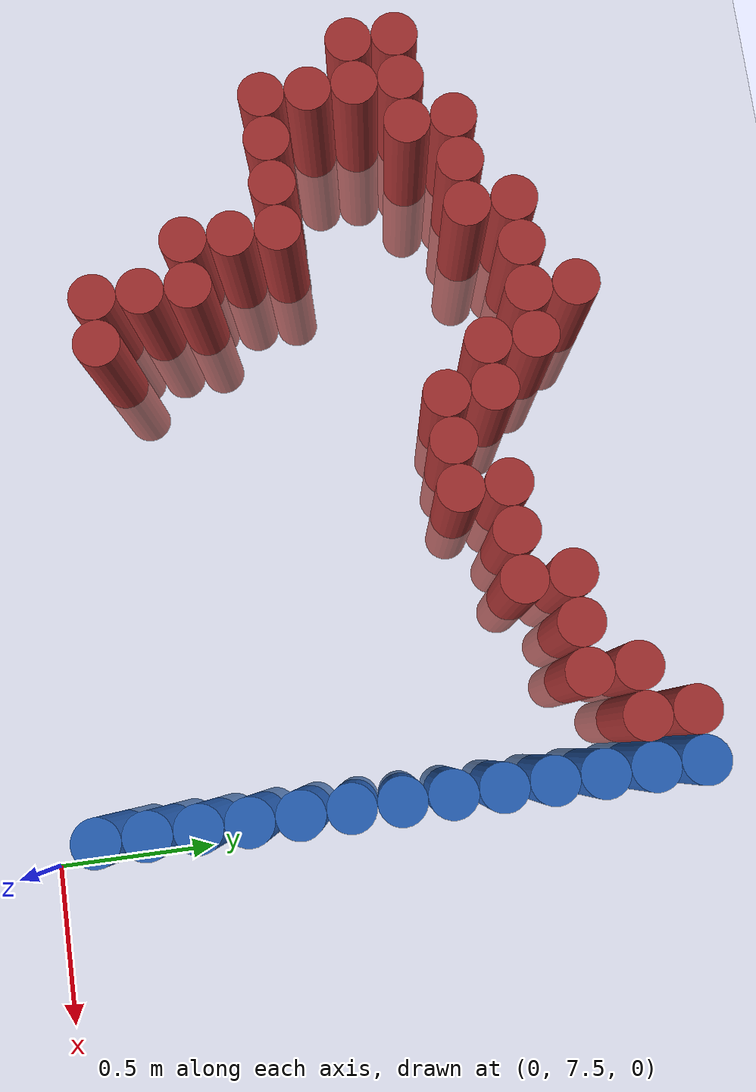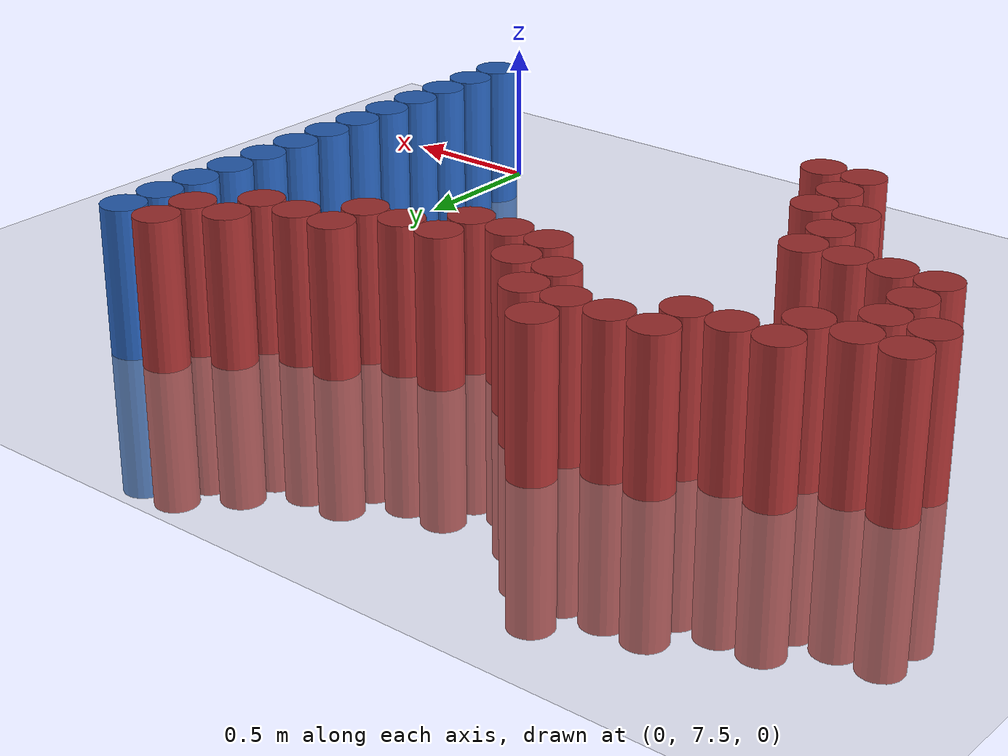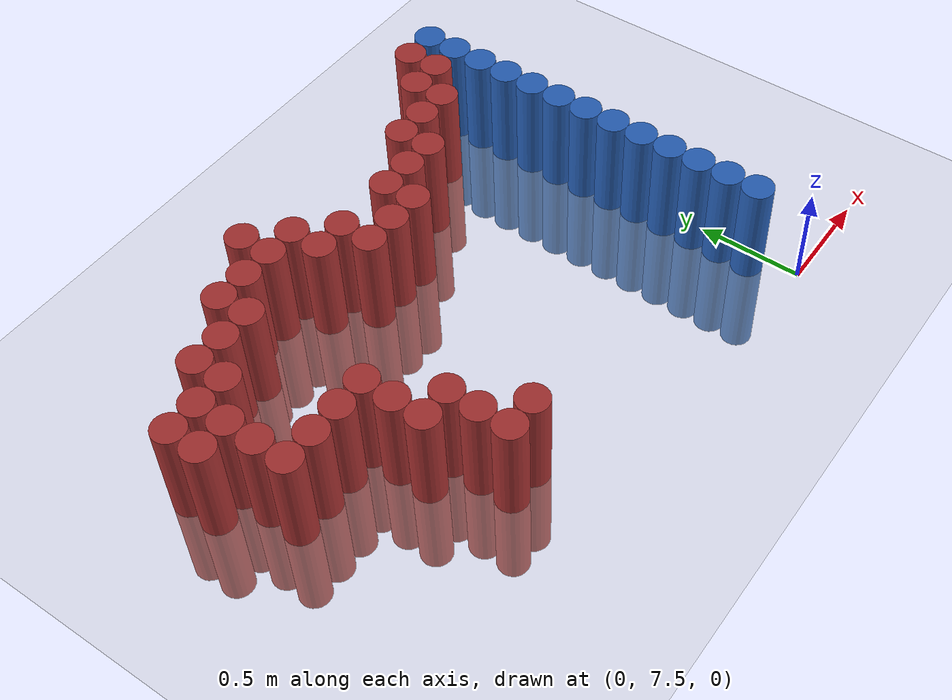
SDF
<sdf version="1.6">
 <world name="default">
  <model name="ground_plane">
   <static>1</static>
   <link name="link">
    <collision name="collision">
     <geometry><plane><normal>0 0 1</normal><size>100 100</size></plane></geometry>
     <surface><friction><ode><mu>100</mu><mu2>50</mu2></ode></friction></surface>
    </collision>
    <visual name="visual">
     <cast_shadows>0</cast_shadows>
     <geometry><plane><normal>0 0 1</normal><size>100 100</size></plane></geometry>
     <material>
      <script><uri>file://media/materials/scripts/gazebo.material</uri><name>Gazebo/Grey</name></script>
     </material>
    </visual>
   </link>
  </model>
  <model name="unit_cylinder_180">
   <static>1</static>
   <pose>-2.475000 8.775000 0.000000 0.000000 0.000000 0.000000</pose>
   <link name="link">
    <inertial>
     <mass>1</mass>
     <inertia><ixx>0.145833</ixx><ixy>0</ixy><ixz>0</ixz><iyy>0.145833</iyy><iyz>0</iyz><izz>0.125</izz></inertia>
    </inertial>
    <collision name="collision">
     <geometry><cylinder><radius>0.075000</radius><length>1</length></cylinder></geometry>
    </collision>
    <visual name="visual">
     <geometry><cylinder><radius>0.075000</radius><length>1</length></cylinder></geometry>
     <material>
      <ambient>0.648000 0.192000 0.192000 1</ambient>
      <diffuse>0.648000 0.192000 0.192000 1</diffuse>
     </material>
     <material>
      <script><name>Gazebo/Grey</name><uri>file://media/materials/scripts/gazebo.material</uri></script>
     </material>
    </visual>
   </link>
  </model>
  <model name="unit_cylinder_181">
   <static>1</static>
   <pose>-2.475000 8.925000 0.000000 0.000000 0.000000 0.000000</pose>
   <link name="link">
    <inertial>
     <mass>1</mass>
     <inertia><ixx>0.145833</ixx><ixy>0</ixy><ixz>0</ixz><iyy>0.145833</iyy><iyz>0</iyz><izz>0.125</izz></inertia>
    </inertial>
    <collision name="collision">
     <geometry><cylinder><radius>0.075000</radius><length>1</length></cylinder></geometry>
    </collision>
    <visual name="visual">
     <geometry><cylinder><radius>0.075000</radius><length>1</length></cylinder></geometry>
     <material>
      <ambient>0.648000 0.192000 0.192000 1</ambient>
      <diffuse>0.648000 0.192000 0.192000 1</diffuse>
     </material>
     <material>
      <script><name>Gazebo/Grey</name><uri>file://media/materials/scripts/gazebo.material</uri></script>
     </material>
    </visual>
   </link>
  </model>
  <model name="unit_cylinder_182">
   <static>1</static>
   <pose>-2.325000 8.475000 0.000000 0.000000 0.000000 0.000000</pose>
   <link name="link">
    <inertial>
     <mass>1</mass>
     <inertia><ixx>0.145833</ixx><ixy>0</ixy><ixz>0</ixz><iyy>0.145833</iyy><iyz>0</iyz><izz>0.125</izz></inertia>
    </inertial>
    <collision name="collision">
     <geometry><cylinder><radius>0.075000</radius><length>1</length></cylinder></geometry>
    </collision>
    <visual name="visual">
     <geometry><cylinder><radius>0.075000</radius><length>1</length></cylinder></geometry>
     <material>
      <ambient>0.648000 0.192000 0.192000 1</ambient>
      <diffuse>0.648000 0.192000 0.192000 1</diffuse>
     </material>
     <material>
      <script><name>Gazebo/Grey</name><uri>file://media/materials/scripts/gazebo.material</uri></script>
     </material>
    </visual>
   </link>
  </model>
  <model name="unit_cylinder_183">
   <static>1</static>
   <pose>-2.325000 8.625000 0.000000 0.000000 0.000000 0.000000</pose>
   <link name="link">
    <inertial>
     <mass>1</mass>
     <inertia><ixx>0.145833</ixx><ixy>0</ixy><ixz>0</ixz><iyy>0.145833</iyy><iyz>0</iyz><izz>0.125</izz></inertia>
    </inertial>
    <collision name="collision">
     <geometry><cylinder><radius>0.075000</radius><length>1</length></cylinder></geometry>
    </collision>
    <visual name="visual">
     <geometry><cylinder><radius>0.075000</radius><length>1</length></cylinder></geometry>
     <material>
      <ambient>0.648000 0.192000 0.192000 1</ambient>
      <diffuse>0.648000 0.192000 0.192000 1</diffuse>
     </material>
     <material>
      <script><name>Gazebo/Grey</name><uri>file://media/materials/scripts/gazebo.material</uri></script>
     </material>
    </visual>
   </link>
  </model>
  <model name="unit_cylinder_184">
   <static>1</static>
   <pose>-2.325000 8.775000 0.000000 0.000000 0.000000 0.000000</pose>
   <link name="link">
    <inertial>
     <mass>1</mass>
     <inertia><ixx>0.145833</ixx><ixy>0</ixy><ixz>0</ixz><iyy>0.145833</iyy><iyz>0</iyz><izz>0.125</izz></inertia>
    </inertial>
    <collision name="collision">
     <geometry><cylinder><radius>0.075000</radius><length>1</length></cylinder></geometry>
    </collision>
    <visual name="visual">
     <geometry><cylinder><radius>0.075000</radius><length>1</length></cylinder></geometry>
     <material>
      <ambient>0.648000 0.192000 0.192000 1</ambient>
      <diffuse>0.648000 0.192000 0.192000 1</diffuse>
     </material>
     <material>
      <script><name>Gazebo/Grey</name><uri>file://media/materials/scripts/gazebo.material</uri></script>
     </material>
    </visual>
   </link>
  </model>
  <model name="unit_cylinder_185">
   <static>1</static>
   <pose>-2.325000 8.925000 0.000000 0.000000 0.000000 0.000000</pose>
   <link name="link">
    <inertial>
     <mass>1</mass>
     <inertia><ixx>0.145833</ixx><ixy>0</ixy><ixz>0</ixz><iyy>0.145833</iyy><iyz>0</iyz><izz>0.125</izz></inertia>
    </inertial>
    <collision name="collision">
     <geometry><cylinder><radius>0.075000</radius><length>1</length></cylinder></geometry>
    </collision>
    <visual name="visual">
     <geometry><cylinder><radius>0.075000</radius><length>1</length></cylinder></geometry>
     <material>
      <ambient>0.648000 0.192000 0.192000 1</ambient>
      <diffuse>0.648000 0.192000 0.192000 1</diffuse>
     </material>
     <material>
      <script><name>Gazebo/Grey</name><uri>file://media/materials/scripts/gazebo.material</uri></script>
     </material>
    </visual>
   </link>
  </model>
  <model name="unit_cylinder_186">
   <static>1</static>
   <pose>-2.175000 8.475000 0.000000 0.000000 0.000000 0.000000</pose>
   <link name="link">
    <inertial>
     <mass>1</mass>
     <inertia><ixx>0.145833</ixx><ixy>0</ixy><ixz>0</ixz><iyy>0.145833</iyy><iyz>0</iyz><izz>0.125</izz></inertia>
    </inertial>
    <collision name="collision">
     <geometry><cylinder><radius>0.075000</radius><length>1</length></cylinder></geometry>
    </collision>
    <visual name="visual">
     <geometry><cylinder><radius>0.075000</radius><length>1</length></cylinder></geometry>
     <material>
      <ambient>0.648000 0.192000 0.192000 1</ambient>
      <diffuse>0.648000 0.192000 0.192000 1</diffuse>
     </material>
     <material>
      <script><name>Gazebo/Grey</name><uri>file://media/materials/scripts/gazebo.material</uri></script>
     </material>
    </visual>
   </link>
  </model>
  <model name="unit_cylinder_187">
   <static>1</static>
   <pose>-2.175000 8.925000 0.000000 0.000000 0.000000 0.000000</pose>
   <link name="link">
    <inertial>
     <mass>1</mass>
     <inertia><ixx>0.145833</ixx><ixy>0</ixy><ixz>0</ixz><iyy>0.145833</iyy><iyz>0</iyz><izz>0.125</izz></inertia>
    </inertial>
    <collision name="collision">
     <geometry><cylinder><radius>0.075000</radius><length>1</length></cylinder></geometry>
    </collision>
    <visual name="visual">
     <geometry><cylinder><radius>0.075000</radius><length>1</length></cylinder></geometry>
     <material>
      <ambient>0.648000 0.192000 0.192000 1</ambient>
      <diffuse>0.648000 0.192000 0.192000 1</diffuse>
     </material>
     <material>
      <script><name>Gazebo/Grey</name><uri>file://media/materials/scripts/gazebo.material</uri></script>
     </material>
    </visual>
   </link>
  </model>
  <model name="unit_cylinder_188">
   <static>1</static>
   <pose>-2.175000 9.075000 0.000000 0.000000 0.000000 0.000000</pose>
   <link name="link">
    <inertial>
     <mass>1</mass>
     <inertia><ixx>0.145833</ixx><ixy>0</ixy><ixz>0</ixz><iyy>0.145833</iyy><iyz>0</iyz><izz>0.125</izz></inertia>
    </inertial>
    <collision name="collision">
     <geometry><cylinder><radius>0.075000</radius><length>1</length></cylinder></geometry>
    </collision>
    <visual name="visual">
     <geometry><cylinder><radius>0.075000</radius><length>1</length></cylinder></geometry>
     <material>
      <ambient>0.648000 0.192000 0.192000 1</ambient>
      <diffuse>0.648000 0.192000 0.192000 1</diffuse>
     </material>
     <material>
      <script><name>Gazebo/Grey</name><uri>file://media/materials/scripts/gazebo.material</uri></script>
     </material>
    </visual>
   </link>
  </model>
  <model name="unit_cylinder_189">
   <static>1</static>
   <pose>-2.025000 8.475000 0.000000 0.000000 0.000000 0.000000</pose>
   <link name="link">
    <inertial>
     <mass>1</mass>
     <inertia><ixx>0.145833</ixx><ixy>0</ixy><ixz>0</ixz><iyy>0.145833</iyy><iyz>0</iyz><izz>0.125</izz></inertia>
    </inertial>
    <collision name="collision">
     <geometry><cylinder><radius>0.075000</radius><length>1</length></cylinder></geometry>
    </collision>
    <visual name="visual">
     <geometry><cylinder><radius>0.075000</radius><length>1</length></cylinder></geometry>
     <material>
      <ambient>0.648000 0.192000 0.192000 1</ambient>
      <diffuse>0.648000 0.192000 0.192000 1</diffuse>
     </material>
     <material>
      <script><name>Gazebo/Grey</name><uri>file://media/materials/scripts/gazebo.material</uri></script>
     </material>
    </visual>
   </link>
  </model>
  <model name="unit_cylinder_190">
   <static>1</static>
   <pose>-2.025000 9.075000 0.000000 0.000000 0.000000 0.000000</pose>
   <link name="link">
    <inertial>
     <mass>1</mass>
     <inertia><ixx>0.145833</ixx><ixy>0</ixy><ixz>0</ixz><iyy>0.145833</iyy><iyz>0</iyz><izz>0.125</izz></inertia>
    </inertial>
    <collision name="collision">
     <geometry><cylinder><radius>0.075000</radius><length>1</length></cylinder></geometry>
    </collision>
    <visual name="visual">
     <geometry><cylinder><radius>0.075000</radius><length>1</length></cylinder></geometry>
     <material>
      <ambient>0.648000 0.192000 0.192000 1</ambient>
      <diffuse>0.648000 0.192000 0.192000 1</diffuse>
     </material>
     <material>
      <script><name>Gazebo/Grey</name><uri>file://media/materials/scripts/gazebo.material</uri></script>
     </material>
    </visual>
   </link>
  </model>
  <model name="unit_cylinder_191">
   <static>1</static>
   <pose>-1.875000 8.175000 0.000000 0.000000 0.000000 0.000000</pose>
   <link name="link">
    <inertial>
     <mass>1</mass>
     <inertia><ixx>0.145833</ixx><ixy>0</ixy><ixz>0</ixz><iyy>0.145833</iyy><iyz>0</iyz><izz>0.125</izz></inertia>
    </inertial>
    <collision name="collision">
     <geometry><cylinder><radius>0.075000</radius><length>1</length></cylinder></geometry>
    </collision>
    <visual name="visual">
     <geometry><cylinder><radius>0.075000</radius><length>1</length></cylinder></geometry>
     <material>
      <ambient>0.648000 0.192000 0.192000 1</ambient>
      <diffuse>0.648000 0.192000 0.192000 1</diffuse>
     </material>
     <material>
      <script><name>Gazebo/Grey</name><uri>file://media/materials/scripts/gazebo.material</uri></script>
     </material>
    </visual>
   </link>
  </model>
  <model name="unit_cylinder_192">
   <static>1</static>
   <pose>-1.875000 8.325000 0.000000 0.000000 0.000000 0.000000</pose>
   <link name="link">
    <inertial>
     <mass>1</mass>
     <inertia><ixx>0.145833</ixx><ixy>0</ixy><ixz>0</ixz><iyy>0.145833</iyy><iyz>0</iyz><izz>0.125</izz></inertia>
    </inertial>
    <collision name="collision">
     <geometry><cylinder><radius>0.075000</radius><length>1</length></cylinder></geometry>
    </collision>
    <visual name="visual">
     <geometry><cylinder><radius>0.075000</radius><length>1</length></cylinder></geometry>
     <material>
      <ambient>0.648000 0.192000 0.192000 1</ambient>
      <diffuse>0.648000 0.192000 0.192000 1</diffuse>
     </material>
     <material>
      <script><name>Gazebo/Grey</name><uri>file://media/materials/scripts/gazebo.material</uri></script>
     </material>
    </visual>
   </link>
  </model>
  <model name="unit_cylinder_193">
   <static>1</static>
   <pose>-1.875000 8.475000 0.000000 0.000000 0.000000 0.000000</pose>
   <link name="link">
    <inertial>
     <mass>1</mass>
     <inertia><ixx>0.145833</ixx><ixy>0</ixy><ixz>0</ixz><iyy>0.145833</iyy><iyz>0</iyz><izz>0.125</izz></inertia>
    </inertial>
    <collision name="collision">
     <geometry><cylinder><radius>0.075000</radius><length>1</length></cylinder></geometry>
    </collision>
    <visual name="visual">
     <geometry><cylinder><radius>0.075000</radius><length>1</length></cylinder></geometry>
     <material>
      <ambient>0.648000 0.192000 0.192000 1</ambient>
      <diffuse>0.648000 0.192000 0.192000 1</diffuse>
     </material>
     <material>
      <script><name>Gazebo/Grey</name><uri>file://media/materials/scripts/gazebo.material</uri></script>
     </material>
    </visual>
   </link>
  </model>
  <model name="unit_cylinder_194">
   <static>1</static>
   <pose>-1.875000 9.075000 0.000000 0.000000 0.000000 0.000000</pose>
   <link name="link">
    <inertial>
     <mass>1</mass>
     <inertia><ixx>0.145833</ixx><ixy>0</ixy><ixz>0</ixz><iyy>0.145833</iyy><iyz>0</iyz><izz>0.125</izz></inertia>
    </inertial>
    <collision name="collision">
     <geometry><cylinder><radius>0.075000</radius><length>1</length></cylinder></geometry>
    </collision>
    <visual name="visual">
     <geometry><cylinder><radius>0.075000</radius><length>1</length></cylinder></geometry>
     <material>
      <ambient>0.648000 0.192000 0.192000 1</ambient>
      <diffuse>0.648000 0.192000 0.192000 1</diffuse>
     </material>
     <material>
      <script><name>Gazebo/Grey</name><uri>file://media/materials/scripts/gazebo.material</uri></script>
     </material>
    </visual>
   </link>
  </model>
  <model name="unit_cylinder_195">
   <static>1</static>
   <pose>-1.875000 9.225000 0.000000 0.000000 0.000000 0.000000</pose>
   <link name="link">
    <inertial>
     <mass>1</mass>
     <inertia><ixx>0.145833</ixx><ixy>0</ixy><ixz>0</ixz><iyy>0.145833</iyy><iyz>0</iyz><izz>0.125</izz></inertia>
    </inertial>
    <collision name="collision">
     <geometry><cylinder><radius>0.075000</radius><length>1</length></cylinder></geometry>
    </collision>
    <visual name="visual">
     <geometry><cylinder><radius>0.075000</radius><length>1</length></cylinder></geometry>
     <material>
      <ambient>0.648000 0.192000 0.192000 1</ambient>
      <diffuse>0.648000 0.192000 0.192000 1</diffuse>
     </material>
     <material>
      <script><name>Gazebo/Grey</name><uri>file://media/materials/scripts/gazebo.material</uri></script>
     </material>
    </visual>
   </link>
  </model>
  <model name="unit_cylinder_196">
   <static>1</static>
   <pose>-1.725000 7.875000 0.000000 0.000000 0.000000 0.000000</pose>
   <link name="link">
    <inertial>
     <mass>1</mass>
     <inertia><ixx>0.145833</ixx><ixy>0</ixy><ixz>0</ixz><iyy>0.145833</iyy><iyz>0</iyz><izz>0.125</izz></inertia>
    </inertial>
    <collision name="collision">
     <geometry><cylinder><radius>0.075000</radius><length>1</length></cylinder></geometry>
    </collision>
    <visual name="visual">
     <geometry><cylinder><radius>0.075000</radius><length>1</length></cylinder></geometry>
     <material>
      <ambient>0.648000 0.192000 0.192000 1</ambient>
      <diffuse>0.648000 0.192000 0.192000 1</diffuse>
     </material>
     <material>
      <script><name>Gazebo/Grey</name><uri>file://media/materials/scripts/gazebo.material</uri></script>
     </material>
    </visual>
   </link>
  </model>
  <model name="unit_cylinder_197">
   <static>1</static>
   <pose>-1.725000 8.025000 0.000000 0.000000 0.000000 0.000000</pose>
   <link name="link">
    <inertial>
     <mass>1</mass>
     <inertia><ixx>0.145833</ixx><ixy>0</ixy><ixz>0</ixz><iyy>0.145833</iyy><iyz>0</iyz><izz>0.125</izz></inertia>
    </inertial>
    <collision name="collision">
     <geometry><cylinder><radius>0.075000</radius><length>1</length></cylinder></geometry>
    </collision>
    <visual name="visual">
     <geometry><cylinder><radius>0.075000</radius><length>1</length></cylinder></geometry>
     <material>
      <ambient>0.648000 0.192000 0.192000 1</ambient>
      <diffuse>0.648000 0.192000 0.192000 1</diffuse>
     </material>
     <material>
      <script><name>Gazebo/Grey</name><uri>file://media/materials/scripts/gazebo.material</uri></script>
     </material>
    </visual>
   </link>
  </model>
  <model name="unit_cylinder_198">
   <static>1</static>
   <pose>-1.725000 8.175000 0.000000 0.000000 0.000000 0.000000</pose>
   <link name="link">
    <inertial>
     <mass>1</mass>
     <inertia><ixx>0.145833</ixx><ixy>0</ixy><ixz>0</ixz><iyy>0.145833</iyy><iyz>0</iyz><izz>0.125</izz></inertia>
    </inertial>
    <collision name="collision">
     <geometry><cylinder><radius>0.075000</radius><length>1</length></cylinder></geometry>
    </collision>
    <visual name="visual">
     <geometry><cylinder><radius>0.075000</radius><length>1</length></cylinder></geometry>
     <material>
      <ambient>0.648000 0.192000 0.192000 1</ambient>
      <diffuse>0.648000 0.192000 0.192000 1</diffuse>
     </material>
     <material>
      <script><name>Gazebo/Grey</name><uri>file://media/materials/scripts/gazebo.material</uri></script>
     </material>
    </visual>
   </link>
  </model>
  <model name="unit_cylinder_199">
   <static>1</static>
   <pose>-1.725000 9.225000 0.000000 0.000000 0.000000 0.000000</pose>
   <link name="link">
    <inertial>
     <mass>1</mass>
     <inertia><ixx>0.145833</ixx><ixy>0</ixy><ixz>0</ixz><iyy>0.145833</iyy><iyz>0</iyz><izz>0.125</izz></inertia>
    </inertial>
    <collision name="collision">
     <geometry><cylinder><radius>0.075000</radius><length>1</length></cylinder></geometry>
    </collision>
    <visual name="visual">
     <geometry><cylinder><radius>0.075000</radius><length>1</length></cylinder></geometry>
     <material>
      <ambient>0.648000 0.192000 0.192000 1</ambient>
      <diffuse>0.648000 0.192000 0.192000 1</diffuse>
     </material>
     <material>
      <script><name>Gazebo/Grey</name><uri>file://media/materials/scripts/gazebo.material</uri></script>
     </material>
    </visual>
   </link>
  </model>
  <model name="unit_cylinder_202">
   <static>1</static>
   <pose>-1.575000 7.875000 0.000000 0.000000 0.000000 0.000000</pose>
   <link name="link">
    <inertial>
     <mass>1</mass>
     <inertia><ixx>0.145833</ixx><ixy>0</ixy><ixz>0</ixz><iyy>0.145833</iyy><iyz>0</iyz><izz>0.125</izz></inertia>
    </inertial>
    <collision name="collision">
     <geometry><cylinder><radius>0.075000</radius><length>1</length></cylinder></geometry>
    </collision>
    <visual name="visual">
     <geometry><cylinder><radius>0.075000</radius><length>1</length></cylinder></geometry>
     <material>
      <ambient>0.648000 0.192000 0.192000 1</ambient>
      <diffuse>0.648000 0.192000 0.192000 1</diffuse>
     </material>
     <material>
      <script><name>Gazebo/Grey</name><uri>file://media/materials/scripts/gazebo.material</uri></script>
     </material>
    </visual>
   </link>
  </model>
  <model name="unit_cylinder_203">
   <static>1</static>
   <pose>-1.575000 9.225000 0.000000 0.000000 0.000000 0.000000</pose>
   <link name="link">
    <inertial>
     <mass>1</mass>
     <inertia><ixx>0.145833</ixx><ixy>0</ixy><ixz>0</ixz><iyy>0.145833</iyy><iyz>0</iyz><izz>0.125</izz></inertia>
    </inertial>
    <collision name="collision">
     <geometry><cylinder><radius>0.075000</radius><length>1</length></cylinder></geometry>
    </collision>
    <visual name="visual">
     <geometry><cylinder><radius>0.075000</radius><length>1</length></cylinder></geometry>
     <material>
      <ambient>0.648000 0.192000 0.192000 1</ambient>
      <diffuse>0.648000 0.192000 0.192000 1</diffuse>
     </material>
     <material>
      <script><name>Gazebo/Grey</name><uri>file://media/materials/scripts/gazebo.material</uri></script>
     </material>
    </visual>
   </link>
  </model>
  <model name="unit_cylinder_204">
   <static>1</static>
   <pose>-1.575000 9.375000 0.000000 0.000000 0.000000 0.000000</pose>
   <link name="link">
    <inertial>
     <mass>1</mass>
     <inertia><ixx>0.145833</ixx><ixy>0</ixy><ixz>0</ixz><iyy>0.145833</iyy><iyz>0</iyz><izz>0.125</izz></inertia>
    </inertial>
    <collision name="collision">
     <geometry><cylinder><radius>0.075000</radius><length>1</length></cylinder></geometry>
    </collision>
    <visual name="visual">
     <geometry><cylinder><radius>0.075000</radius><length>1</length></cylinder></geometry>
     <material>
      <ambient>0.648000 0.192000 0.192000 1</ambient>
      <diffuse>0.648000 0.192000 0.192000 1</diffuse>
     </material>
     <material>
      <script><name>Gazebo/Grey</name><uri>file://media/materials/scripts/gazebo.material</uri></script>
     </material>
    </visual>
   </link>
  </model>
  <model name="unit_cylinder_211">
   <static>1</static>
   <pose>-1.425000 9.075000 0.000000 0.000000 0.000000 0.000000</pose>
   <link name="link">
    <inertial>
     <mass>1</mass>
     <inertia><ixx>0.145833</ixx><ixy>0</ixy><ixz>0</ixz><iyy>0.145833</iyy><iyz>0</iyz><izz>0.125</izz></inertia>
    </inertial>
    <collision name="collision">
     <geometry><cylinder><radius>0.075000</radius><length>1</length></cylinder></geometry>
    </collision>
    <visual name="visual">
     <geometry><cylinder><radius>0.075000</radius><length>1</length></cylinder></geometry>
     <material>
      <ambient>0.648000 0.192000 0.192000 1</ambient>
      <diffuse>0.648000 0.192000 0.192000 1</diffuse>
     </material>
     <material>
      <script><name>Gazebo/Grey</name><uri>file://media/materials/scripts/gazebo.material</uri></script>
     </material>
    </visual>
   </link>
  </model>
  <model name="unit_cylinder_212">
   <static>1</static>
   <pose>-1.425000 9.225000 0.000000 0.000000 0.000000 0.000000</pose>
   <link name="link">
    <inertial>
     <mass>1</mass>
     <inertia><ixx>0.145833</ixx><ixy>0</ixy><ixz>0</ixz><iyy>0.145833</iyy><iyz>0</iyz><izz>0.125</izz></inertia>
    </inertial>
    <collision name="collision">
     <geometry><cylinder><radius>0.075000</radius><length>1</length></cylinder></geometry>
    </collision>
    <visual name="visual">
     <geometry><cylinder><radius>0.075000</radius><length>1</length></cylinder></geometry>
     <material>
      <ambient>0.648000 0.192000 0.192000 1</ambient>
      <diffuse>0.648000 0.192000 0.192000 1</diffuse>
     </material>
     <material>
      <script><name>Gazebo/Grey</name><uri>file://media/materials/scripts/gazebo.material</uri></script>
     </material>
    </visual>
   </link>
  </model>
  <model name="unit_cylinder_224">
   <static>1</static>
   <pose>-1.275000 8.925000 0.000000 0.000000 0.000000 0.000000</pose>
   <link name="link">
    <inertial>
     <mass>1</mass>
     <inertia><ixx>0.145833</ixx><ixy>0</ixy><ixz>0</ixz><iyy>0.145833</iyy><iyz>0</iyz><izz>0.125</izz></inertia>
    </inertial>
    <collision name="collision">
     <geometry><cylinder><radius>0.075000</radius><length>1</length></cylinder></geometry>
    </collision>
    <visual name="visual">
     <geometry><cylinder><radius>0.075000</radius><length>1</length></cylinder></geometry>
     <material>
      <ambient>0.648000 0.192000 0.192000 1</ambient>
      <diffuse>0.648000 0.192000 0.192000 1</diffuse>
     </material>
     <material>
      <script><name>Gazebo/Grey</name><uri>file://media/materials/scripts/gazebo.material</uri></script>
     </material>
    </visual>
   </link>
  </model>
  <model name="unit_cylinder_225">
   <static>1</static>
   <pose>-1.275000 9.075000 0.000000 0.000000 0.000000 0.000000</pose>
   <link name="link">
    <inertial>
     <mass>1</mass>
     <inertia><ixx>0.145833</ixx><ixy>0</ixy><ixz>0</ixz><iyy>0.145833</iyy><iyz>0</iyz><izz>0.125</izz></inertia>
    </inertial>
    <collision name="collision">
     <geometry><cylinder><radius>0.075000</radius><length>1</length></cylinder></geometry>
    </collision>
    <visual name="visual">
     <geometry><cylinder><radius>0.075000</radius><length>1</length></cylinder></geometry>
     <material>
      <ambient>0.648000 0.192000 0.192000 1</ambient>
      <diffuse>0.648000 0.192000 0.192000 1</diffuse>
     </material>
     <material>
      <script><name>Gazebo/Grey</name><uri>file://media/materials/scripts/gazebo.material</uri></script>
     </material>
    </visual>
   </link>
  </model>
  <model name="unit_cylinder_230">
   <static>1</static>
   <pose>-1.125000 8.925000 0.000000 0.000000 0.000000 0.000000</pose>
   <link name="link">
    <inertial>
     <mass>1</mass>
     <inertia><ixx>0.145833</ixx><ixy>0</ixy><ixz>0</ixz><iyy>0.145833</iyy><iyz>0</iyz><izz>0.125</izz></inertia>
    </inertial>
    <collision name="collision">
     <geometry><cylinder><radius>0.075000</radius><length>1</length></cylinder></geometry>
    </collision>
    <visual name="visual">
     <geometry><cylinder><radius>0.075000</radius><length>1</length></cylinder></geometry>
     <material>
      <ambient>0.648000 0.192000 0.192000 1</ambient>
      <diffuse>0.648000 0.192000 0.192000 1</diffuse>
     </material>
     <material>
      <script><name>Gazebo/Grey</name><uri>file://media/materials/scripts/gazebo.material</uri></script>
     </material>
    </visual>
   </link>
  </model>
  <model name="unit_cylinder_237">
   <static>1</static>
   <pose>-0.975000 8.925000 0.000000 0.000000 0.000000 0.000000</pose>
   <link name="link">
    <inertial>
     <mass>1</mass>
     <inertia><ixx>0.145833</ixx><ixy>0</ixy><ixz>0</ixz><iyy>0.145833</iyy><iyz>0</iyz><izz>0.125</izz></inertia>
    </inertial>
    <collision name="collision">
     <geometry><cylinder><radius>0.075000</radius><length>1</length></cylinder></geometry>
    </collision>
    <visual name="visual">
     <geometry><cylinder><radius>0.075000</radius><length>1</length></cylinder></geometry>
     <material>
      <ambient>0.648000 0.192000 0.192000 1</ambient>
      <diffuse>0.648000 0.192000 0.192000 1</diffuse>
     </material>
     <material>
      <script><name>Gazebo/Grey</name><uri>file://media/materials/scripts/gazebo.material</uri></script>
     </material>
    </visual>
   </link>
  </model>
  <model name="unit_cylinder_238">
   <static>1</static>
   <pose>-0.975000 9.075000 0.000000 0.000000 0.000000 0.000000</pose>
   <link name="link">
    <inertial>
     <mass>1</mass>
     <inertia><ixx>0.145833</ixx><ixy>0</ixy><ixz>0</ixz><iyy>0.145833</iyy><iyz>0</iyz><izz>0.125</izz></inertia>
    </inertial>
    <collision name="collision">
     <geometry><cylinder><radius>0.075000</radius><length>1</length></cylinder></geometry>
    </collision>
    <visual name="visual">
     <geometry><cylinder><radius>0.075000</radius><length>1</length></cylinder></geometry>
     <material>
      <ambient>0.648000 0.192000 0.192000 1</ambient>
      <diffuse>0.648000 0.192000 0.192000 1</diffuse>
     </material>
     <material>
      <script><name>Gazebo/Grey</name><uri>file://media/materials/scripts/gazebo.material</uri></script>
     </material>
    </visual>
   </link>
  </model>
  <model name="unit_cylinder_242">
   <static>1</static>
   <pose>-0.825000 9.075000 0.000000 0.000000 0.000000 0.000000</pose>
   <link name="link">
    <inertial>
     <mass>1</mass>
     <inertia><ixx>0.145833</ixx><ixy>0</ixy><ixz>0</ixz><iyy>0.145833</iyy><iyz>0</iyz><izz>0.125</izz></inertia>
    </inertial>
    <collision name="collision">
     <geometry><cylinder><radius>0.075000</radius><length>1</length></cylinder></geometry>
    </collision>
    <visual name="visual">
     <geometry><cylinder><radius>0.075000</radius><length>1</length></cylinder></geometry>
     <material>
      <ambient>0.648000 0.192000 0.192000 1</ambient>
      <diffuse>0.648000 0.192000 0.192000 1</diffuse>
     </material>
     <material>
      <script><name>Gazebo/Grey</name><uri>file://media/materials/scripts/gazebo.material</uri></script>
     </material>
    </visual>
   </link>
  </model>
  <model name="unit_cylinder_249">
   <static>1</static>
   <pose>-0.675000 9.075000 0.000000 0.000000 0.000000 0.000000</pose>
   <link name="link">
    <inertial>
     <mass>1</mass>
     <inertia><ixx>0.145833</ixx><ixy>0</ixy><ixz>0</ixz><iyy>0.145833</iyy><iyz>0</iyz><izz>0.125</izz></inertia>
    </inertial>
    <collision name="collision">
     <geometry><cylinder><radius>0.075000</radius><length>1</length></cylinder></geometry>
    </collision>
    <visual name="visual">
     <geometry><cylinder><radius>0.075000</radius><length>1</length></cylinder></geometry>
     <material>
      <ambient>0.648000 0.192000 0.192000 1</ambient>
      <diffuse>0.648000 0.192000 0.192000 1</diffuse>
     </material>
     <material>
      <script><name>Gazebo/Grey</name><uri>file://media/materials/scripts/gazebo.material</uri></script>
     </material>
    </visual>
   </link>
  </model>
  <model name="unit_cylinder_250">
   <static>1</static>
   <pose>-0.675000 9.225000 0.000000 0.000000 0.000000 0.000000</pose>
   <link name="link">
    <inertial>
     <mass>1</mass>
     <inertia><ixx>0.145833</ixx><ixy>0</ixy><ixz>0</ixz><iyy>0.145833</iyy><iyz>0</iyz><izz>0.125</izz></inertia>
    </inertial>
    <collision name="collision">
     <geometry><cylinder><radius>0.075000</radius><length>1</length></cylinder></geometry>
    </collision>
    <visual name="visual">
     <geometry><cylinder><radius>0.075000</radius><length>1</length></cylinder></geometry>
     <material>
      <ambient>0.648000 0.192000 0.192000 1</ambient>
      <diffuse>0.648000 0.192000 0.192000 1</diffuse>
     </material>
     <material>
      <script><name>Gazebo/Grey</name><uri>file://media/materials/scripts/gazebo.material</uri></script>
     </material>
    </visual>
   </link>
  </model>
  <model name="unit_cylinder_258">
   <static>1</static>
   <pose>-0.525000 9.225000 0.000000 0.000000 0.000000 0.000000</pose>
   <link name="link">
    <inertial>
     <mass>1</mass>
     <inertia><ixx>0.145833</ixx><ixy>0</ixy><ixz>0</ixz><iyy>0.145833</iyy><iyz>0</iyz><izz>0.125</izz></inertia>
    </inertial>
    <collision name="collision">
     <geometry><cylinder><radius>0.075000</radius><length>1</length></cylinder></geometry>
    </collision>
    <visual name="visual">
     <geometry><cylinder><radius>0.075000</radius><length>1</length></cylinder></geometry>
     <material>
      <ambient>0.648000 0.192000 0.192000 1</ambient>
      <diffuse>0.648000 0.192000 0.192000 1</diffuse>
     </material>
     <material>
      <script><name>Gazebo/Grey</name><uri>file://media/materials/scripts/gazebo.material</uri></script>
     </material>
    </visual>
   </link>
  </model>
  <model name="unit_cylinder_266">
   <static>1</static>
   <pose>-0.375000 9.225000 0.000000 0.000000 0.000000 0.000000</pose>
   <link name="link">
    <inertial>
     <mass>1</mass>
     <inertia><ixx>0.145833</ixx><ixy>0</ixy><ixz>0</ixz><iyy>0.145833</iyy><iyz>0</iyz><izz>0.125</izz></inertia>
    </inertial>
    <collision name="collision">
     <geometry><cylinder><radius>0.075000</radius><length>1</length></cylinder></geometry>
    </collision>
    <visual name="visual">
     <geometry><cylinder><radius>0.075000</radius><length>1</length></cylinder></geometry>
     <material>
      <ambient>0.648000 0.192000 0.192000 1</ambient>
      <diffuse>0.648000 0.192000 0.192000 1</diffuse>
     </material>
     <material>
      <script><name>Gazebo/Grey</name><uri>file://media/materials/scripts/gazebo.material</uri></script>
     </material>
    </visual>
   </link>
  </model>
  <model name="unit_cylinder_267">
   <static>1</static>
   <pose>-0.375000 9.375000 0.000000 0.000000 0.000000 0.000000</pose>
   <link name="link">
    <inertial>
     <mass>1</mass>
     <inertia><ixx>0.145833</ixx><ixy>0</ixy><ixz>0</ixz><iyy>0.145833</iyy><iyz>0</iyz><izz>0.125</izz></inertia>
    </inertial>
    <collision name="collision">
     <geometry><cylinder><radius>0.075000</radius><length>1</length></cylinder></geometry>
    </collision>
    <visual name="visual">
     <geometry><cylinder><radius>0.075000</radius><length>1</length></cylinder></geometry>
     <material>
      <ambient>0.648000 0.192000 0.192000 1</ambient>
      <diffuse>0.648000 0.192000 0.192000 1</diffuse>
     </material>
     <material>
      <script><name>Gazebo/Grey</name><uri>file://media/materials/scripts/gazebo.material</uri></script>
     </material>
    </visual>
   </link>
  </model>
  <model name="unit_cylinder_273">
   <static>1</static>
   <pose>-0.225000 9.375000 0.000000 0.000000 0.000000 0.000000</pose>
   <link name="link">
    <inertial>
     <mass>1</mass>
     <inertia><ixx>0.145833</ixx><ixy>0</ixy><ixz>0</ixz><iyy>0.145833</iyy><iyz>0</iyz><izz>0.125</izz></inertia>
    </inertial>
    <collision name="collision">
     <geometry><cylinder><radius>0.075000</radius><length>1</length></cylinder></geometry>
    </collision>
    <visual name="visual">
     <geometry><cylinder><radius>0.075000</radius><length>1</length></cylinder></geometry>
     <material>
      <ambient>0.648000 0.192000 0.192000 1</ambient>
      <diffuse>0.648000 0.192000 0.192000 1</diffuse>
     </material>
     <material>
      <script><name>Gazebo/Grey</name><uri>file://media/materials/scripts/gazebo.material</uri></script>
     </material>
    </visual>
   </link>
  </model>
  <model name="unit_cylinder_274">
   <static>1</static>
   <pose>-0.225000 9.525000 0.000000 0.000000 0.000000 0.000000</pose>
   <link name="link">
    <inertial>
     <mass>1</mass>
     <inertia><ixx>0.145833</ixx><ixy>0</ixy><ixz>0</ixz><iyy>0.145833</iyy><iyz>0</iyz><izz>0.125</izz></inertia>
    </inertial>
    <collision name="collision">
     <geometry><cylinder><radius>0.075000</radius><length>1</length></cylinder></geometry>
    </collision>
    <visual name="visual">
     <geometry><cylinder><radius>0.075000</radius><length>1</length></cylinder></geometry>
     <material>
      <ambient>0.648000 0.192000 0.192000 1</ambient>
      <diffuse>0.648000 0.192000 0.192000 1</diffuse>
     </material>
     <material>
      <script><name>Gazebo/Grey</name><uri>file://media/materials/scripts/gazebo.material</uri></script>
     </material>
    </visual>
   </link>
  </model>
  <model name="unit_cylinder_292">
   <static>1</static>
   <pose>-0.075000 7.725000 0.000000 0.000000 0.000000 0.000000</pose>
   <link name="link">
    <inertial>
     <mass>1</mass>
     <inertia><ixx>0.145833</ixx><ixy>0</ixy><ixz>0</ixz><iyy>0.145833</iyy><iyz>0</iyz><izz>0.125</izz></inertia>
    </inertial>
    <collision name="collision">
     <geometry><cylinder><radius>0.075000</radius><length>1</length></cylinder></geometry>
    </collision>
    <visual name="visual">
     <geometry><cylinder><radius>0.075000</radius><length>1</length></cylinder></geometry>
     <material>
      <ambient>0.152000 0.379000 0.720000 1</ambient>
      <diffuse>0.152000 0.379000 0.720000 1</diffuse>
     </material>
     <material>
      <script><name>Gazebo/Grey</name><uri>file://media/materials/scripts/gazebo.material</uri></script>
     </material>
    </visual>
   </link>
  </model>
  <model name="unit_cylinder_293">
   <static>1</static>
   <pose>-0.075000 7.875000 0.000000 0.000000 0.000000 0.000000</pose>
   <link name="link">
    <inertial>
     <mass>1</mass>
     <inertia><ixx>0.145833</ixx><ixy>0</ixy><ixz>0</ixz><iyy>0.145833</iyy><iyz>0</iyz><izz>0.125</izz></inertia>
    </inertial>
    <collision name="collision">
     <geometry><cylinder><radius>0.075000</radius><length>1</length></cylinder></geometry>
    </collision>
    <visual name="visual">
     <geometry><cylinder><radius>0.075000</radius><length>1</length></cylinder></geometry>
     <material>
      <ambient>0.152000 0.379000 0.720000 1</ambient>
      <diffuse>0.152000 0.379000 0.720000 1</diffuse>
     </material>
     <material>
      <script><name>Gazebo/Grey</name><uri>file://media/materials/scripts/gazebo.material</uri></script>
     </material>
    </visual>
   </link>
  </model>
  <model name="unit_cylinder_294">
   <static>1</static>
   <pose>-0.075000 8.025000 0.000000 0.000000 0.000000 0.000000</pose>
   <link name="link">
    <inertial>
     <mass>1</mass>
     <inertia><ixx>0.145833</ixx><ixy>0</ixy><ixz>0</ixz><iyy>0.145833</iyy><iyz>0</iyz><izz>0.125</izz></inertia>
    </inertial>
    <collision name="collision">
     <geometry><cylinder><radius>0.075000</radius><length>1</length></cylinder></geometry>
    </collision>
    <visual name="visual">
     <geometry><cylinder><radius>0.075000</radius><length>1</length></cylinder></geometry>
     <material>
      <ambient>0.152000 0.379000 0.720000 1</ambient>
      <diffuse>0.152000 0.379000 0.720000 1</diffuse>
     </material>
     <material>
      <script><name>Gazebo/Grey</name><uri>file://media/materials/scripts/gazebo.material</uri></script>
     </material>
    </visual>
   </link>
  </model>
  <model name="unit_cylinder_295">
   <static>1</static>
   <pose>-0.075000 8.175000 0.000000 0.000000 0.000000 0.000000</pose>
   <link name="link">
    <inertial>
     <mass>1</mass>
     <inertia><ixx>0.145833</ixx><ixy>0</ixy><ixz>0</ixz><iyy>0.145833</iyy><iyz>0</iyz><izz>0.125</izz></inertia>
    </inertial>
    <collision name="collision">
     <geometry><cylinder><radius>0.075000</radius><length>1</length></cylinder></geometry>
    </collision>
    <visual name="visual">
     <geometry><cylinder><radius>0.075000</radius><length>1</length></cylinder></geometry>
     <material>
      <ambient>0.152000 0.379000 0.720000 1</ambient>
      <diffuse>0.152000 0.379000 0.720000 1</diffuse>
     </material>
     <material>
      <script><name>Gazebo/Grey</name><uri>file://media/materials/scripts/gazebo.material</uri></script>
     </material>
    </visual>
   </link>
  </model>
  <model name="unit_cylinder_296">
   <static>1</static>
   <pose>-0.075000 8.325000 0.000000 0.000000 0.000000 0.000000</pose>
   <link name="link">
    <inertial>
     <mass>1</mass>
     <inertia><ixx>0.145833</ixx><ixy>0</ixy><ixz>0</ixz><iyy>0.145833</iyy><iyz>0</iyz><izz>0.125</izz></inertia>
    </inertial>
    <collision name="collision">
     <geometry><cylinder><radius>0.075000</radius><length>1</length></cylinder></geometry>
    </collision>
    <visual name="visual">
     <geometry><cylinder><radius>0.075000</radius><length>1</length></cylinder></geometry>
     <material>
      <ambient>0.152000 0.379000 0.720000 1</ambient>
      <diffuse>0.152000 0.379000 0.720000 1</diffuse>
     </material>
     <material>
      <script><name>Gazebo/Grey</name><uri>file://media/materials/scripts/gazebo.material</uri></script>
     </material>
    </visual>
   </link>
  </model>
  <model name="unit_cylinder_297">
   <static>1</static>
   <pose>-0.075000 8.475000 0.000000 0.000000 0.000000 0.000000</pose>
   <link name="link">
    <inertial>
     <mass>1</mass>
     <inertia><ixx>0.145833</ixx><ixy>0</ixy><ixz>0</ixz><iyy>0.145833</iyy><iyz>0</iyz><izz>0.125</izz></inertia>
    </inertial>
    <collision name="collision">
     <geometry><cylinder><radius>0.075000</radius><length>1</length></cylinder></geometry>
    </collision>
    <visual name="visual">
     <geometry><cylinder><radius>0.075000</radius><length>1</length></cylinder></geometry>
     <material>
      <ambient>0.152000 0.379000 0.720000 1</ambient>
      <diffuse>0.152000 0.379000 0.720000 1</diffuse>
     </material>
     <material>
      <script><name>Gazebo/Grey</name><uri>file://media/materials/scripts/gazebo.material</uri></script>
     </material>
    </visual>
   </link>
  </model>
  <model name="unit_cylinder_298">
   <static>1</static>
   <pose>-0.075000 8.625000 0.000000 0.000000 0.000000 0.000000</pose>
   <link name="link">
    <inertial>
     <mass>1</mass>
     <inertia><ixx>0.145833</ixx><ixy>0</ixy><ixz>0</ixz><iyy>0.145833</iyy><iyz>0</iyz><izz>0.125</izz></inertia>
    </inertial>
    <collision name="collision">
     <geometry><cylinder><radius>0.075000</radius><length>1</length></cylinder></geometry>
    </collision>
    <visual name="visual">
     <geometry><cylinder><radius>0.075000</radius><length>1</length></cylinder></geometry>
     <material>
      <ambient>0.152000 0.379000 0.720000 1</ambient>
      <diffuse>0.152000 0.379000 0.720000 1</diffuse>
     </material>
     <material>
      <script><name>Gazebo/Grey</name><uri>file://media/materials/scripts/gazebo.material</uri></script>
     </material>
    </visual>
   </link>
  </model>
  <model name="unit_cylinder_299">
   <static>1</static>
   <pose>-0.075000 8.775000 0.000000 0.000000 0.000000 0.000000</pose>
   <link name="link">
    <inertial>
     <mass>1</mass>
     <inertia><ixx>0.145833</ixx><ixy>0</ixy><ixz>0</ixz><iyy>0.145833</iyy><iyz>0</iyz><izz>0.125</izz></inertia>
    </inertial>
    <collision name="collision">
     <geometry><cylinder><radius>0.075000</radius><length>1</length></cylinder></geometry>
    </collision>
    <visual name="visual">
     <geometry><cylinder><radius>0.075000</radius><length>1</length></cylinder></geometry>
     <material>
      <ambient>0.152000 0.379000 0.720000 1</ambient>
      <diffuse>0.152000 0.379000 0.720000 1</diffuse>
     </material>
     <material>
      <script><name>Gazebo/Grey</name><uri>file://media/materials/scripts/gazebo.material</uri></script>
     </material>
    </visual>
   </link>
  </model>
  <model name="unit_cylinder_300">
   <static>1</static>
   <pose>-0.075000 8.925000 0.000000 0.000000 0.000000 0.000000</pose>
   <link name="link">
    <inertial>
     <mass>1</mass>
     <inertia><ixx>0.145833</ixx><ixy>0</ixy><ixz>0</ixz><iyy>0.145833</iyy><iyz>0</iyz><izz>0.125</izz></inertia>
    </inertial>
    <collision name="collision">
     <geometry><cylinder><radius>0.075000</radius><length>1</length></cylinder></geometry>
    </collision>
    <visual name="visual">
     <geometry><cylinder><radius>0.075000</radius><length>1</length></cylinder></geometry>
     <material>
      <ambient>0.152000 0.379000 0.720000 1</ambient>
      <diffuse>0.152000 0.379000 0.720000 1</diffuse>
     </material>
     <material>
      <script><name>Gazebo/Grey</name><uri>file://media/materials/scripts/gazebo.material</uri></script>
     </material>
    </visual>
   </link>
  </model>
  <model name="unit_cylinder_301">
   <static>1</static>
   <pose>-0.075000 9.075000 0.000000 0.000000 0.000000 0.000000</pose>
   <link name="link">
    <inertial>
     <mass>1</mass>
     <inertia><ixx>0.145833</ixx><ixy>0</ixy><ixz>0</ixz><iyy>0.145833</iyy><iyz>0</iyz><izz>0.125</izz></inertia>
    </inertial>
    <collision name="collision">
     <geometry><cylinder><radius>0.075000</radius><length>1</length></cylinder></geometry>
    </collision>
    <visual name="visual">
     <geometry><cylinder><radius>0.075000</radius><length>1</length></cylinder></geometry>
     <material>
      <ambient>0.152000 0.379000 0.720000 1</ambient>
      <diffuse>0.152000 0.379000 0.720000 1</diffuse>
     </material>
     <material>
      <script><name>Gazebo/Grey</name><uri>file://media/materials/scripts/gazebo.material</uri></script>
     </material>
    </visual>
   </link>
  </model>
  <model name="unit_cylinder_302">
   <static>1</static>
   <pose>-0.075000 9.225000 0.000000 0.000000 0.000000 0.000000</pose>
   <link name="link">
    <inertial>
     <mass>1</mass>
     <inertia><ixx>0.145833</ixx><ixy>0</ixy><ixz>0</ixz><iyy>0.145833</iyy><iyz>0</iyz><izz>0.125</izz></inertia>
    </inertial>
    <collision name="collision">
     <geometry><cylinder><radius>0.075000</radius><length>1</length></cylinder></geometry>
    </collision>
    <visual name="visual">
     <geometry><cylinder><radius>0.075000</radius><length>1</length></cylinder></geometry>
     <material>
      <ambient>0.152000 0.379000 0.720000 1</ambient>
      <diffuse>0.152000 0.379000 0.720000 1</diffuse>
     </material>
     <material>
      <script><name>Gazebo/Grey</name><uri>file://media/materials/scripts/gazebo.material</uri></script>
     </material>
    </visual>
   </link>
  </model>
  <model name="unit_cylinder_303">
   <static>1</static>
   <pose>-0.075000 9.375000 0.000000 0.000000 0.000000 0.000000</pose>
   <link name="link">
    <inertial>
     <mass>1</mass>
     <inertia><ixx>0.145833</ixx><ixy>0</ixy><ixz>0</ixz><iyy>0.145833</iyy><iyz>0</iyz><izz>0.125</izz></inertia>
    </inertial>
    <collision name="collision">
     <geometry><cylinder><radius>0.075000</radius><length>1</length></cylinder></geometry>
    </collision>
    <visual name="visual">
     <geometry><cylinder><radius>0.075000</radius><length>1</length></cylinder></geometry>
     <material>
      <ambient>0.152000 0.379000 0.720000 1</ambient>
      <diffuse>0.152000 0.379000 0.720000 1</diffuse>
     </material>
     <material>
      <script><name>Gazebo/Grey</name><uri>file://media/materials/scripts/gazebo.material</uri></script>
     </material>
    </visual>
   </link>
  </model>
  <model name="unit_cylinder_304">
   <static>1</static>
   <pose>-0.075000 9.525000 0.000000 0.000000 0.000000 0.000000</pose>
   <link name="link">
    <inertial>
     <mass>1</mass>
     <inertia><ixx>0.145833</ixx><ixy>0</ixy><ixz>0</ixz><iyy>0.145833</iyy><iyz>0</iyz><izz>0.125</izz></inertia>
    </inertial>
    <collision name="collision">
     <geometry><cylinder><radius>0.075000</radius><length>1</length></cylinder></geometry>
    </collision>
    <visual name="visual">
     <geometry><cylinder><radius>0.075000</radius><length>1</length></cylinder></geometry>
     <material>
      <ambient>0.152000 0.379000 0.720000 1</ambient>
      <diffuse>0.152000 0.379000 0.720000 1</diffuse>
     </material>
     <material>
      <script><name>Gazebo/Grey</name><uri>file://media/materials/scripts/gazebo.material</uri></script>
     </material>
    </visual>
   </link>
  </model>
 </world>
</sdf>
